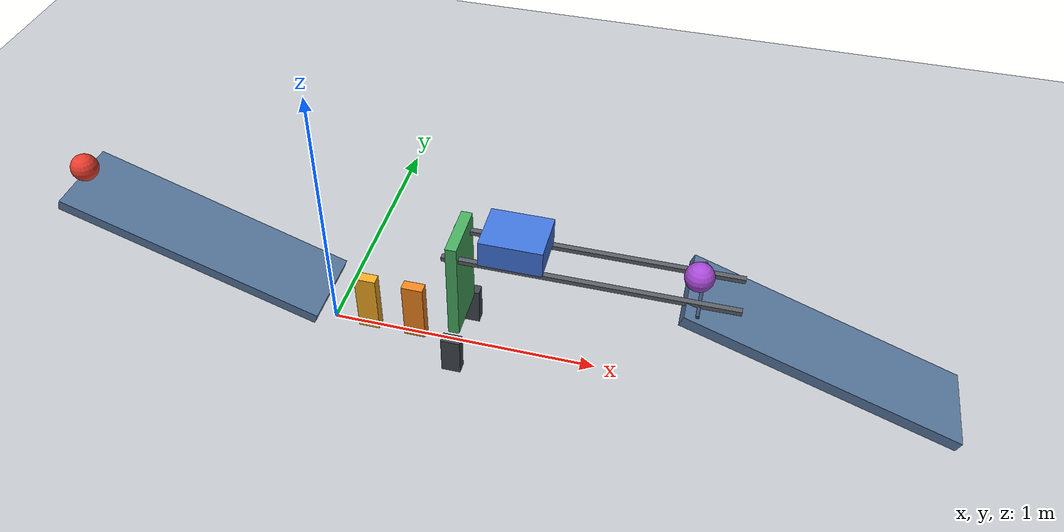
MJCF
<mujoco model="passive_domino_flap_chain">
  <compiler angle="degree" autolimits="true"/>
  <option timestep="0.002" gravity="0 0 -9.81" integrator="implicitfast" solver="Newton" iterations="100" tolerance="1e-10" cone="elliptic"/>

  <visual>
    <headlight ambient="0.35 0.35 0.35" diffuse="0.70 0.70 0.70" specular="0.20 0.20 0.20"/>
    <map znear="0.01" zfar="30"/>
  </visual>

  <!-- Contact damping ratio 0.690107 approximates restitution 0.05. -->
  <!-- Sliding friction is 0.70 throughout. Floor rolling resistance arrests the balls. -->
  <worldbody>
    <light name="overhead" pos="0.6 -1.0 4.0" dir="0 0 -1" directional="true"/>
    <camera name="side" pos="0.65 -3.7 1.70" xyaxes="1 0 0 0 0.3420201433 0.9396926208"/>

    <geom name="floor" type="plane" pos="0 0 0" size="5 3 0.1" friction="0.70 0.005 0.010" condim="6" solref="0.006 0.690107" solimp="0.95 0.99 0.001" rgba="0.76 0.78 0.80 1"/>

    <!-- Ramp top endpoints: (-0.939693, 0, 0.492020) and (0, 0, 0.150000). -->
    <body name="ramp1" pos="-0.4698463104 0 0.3210100717" euler="0 20 0">
      <geom name="ramp1_surface" type="box" pos="0 0 -0.020" size="0.500 0.150 0.020" density="0" friction="0.70 0.005 0.0001" condim="6" solref="0.006 0.690107" solimp="0.95 0.99 0.001" rgba="0.34 0.46 0.61 1"/>
    </body>

    <!-- Ball contact point is 10 mm inside the high end of ramp1. -->
    <body name="ball1" pos="-0.9131946875 0 0.5355845729">
      <freejoint/>
      <geom name="ball1_sphere" type="sphere" size="0.050" mass="0.20" friction="0.70 0.005 0.0001" condim="6" solref="0.006 0.690107" solimp="0.95 0.99 0.001" rgba="0.90 0.23 0.17 1"/>
    </body>

    <!-- The upstream face of domino1 is 0.10 m beyond ramp1's low endpoint. -->
    <body name="domino1" pos="0.140 0 0.120">
      <freejoint/>
      <geom name="domino1_box" type="box" size="0.040 0.020 0.120" mass="0.25" friction="0.70 0.005 0.0001" condim="6" solref="0.006 0.690107" solimp="0.95 0.99 0.001" rgba="0.95 0.67 0.14 1"/>
    </body>

    <body name="domino2" pos="0.320 0 0.120">
      <freejoint/>
      <geom name="domino2_box" type="box" size="0.040 0.020 0.120" mass="0.25" friction="0.70 0.005 0.0001" condim="6" solref="0.006 0.690107" solimp="0.95 0.99 0.001" rgba="0.95 0.52 0.12 1"/>
    </body>

    <!-- Positive rotation about +y is clockwise in the side camera. -->
    <!-- The panel initially spans z=0.15 to 0.55; domino2 strikes its lower half. -->
    <body name="flap1" pos="0.500 0 0.150">
      <joint name="flap1_hinge" type="hinge" axis="0 1 0" limited="true" range="0 65" damping="0.04" frictionloss="0" armature="0" margin="0" solreflimit="0.004 1" solimplimit="0.999 0.9999 0.0001"/>
      <geom name="flap1_panel" type="box" pos="0 0 0.200" size="0.020 0.100 0.200" mass="0.30" friction="0.70 0.005 0.0001" condim="6" solref="0.006 0.690107" solimp="0.95 0.99 0.001" rgba="0.28 0.68 0.38 1"/>
    </body>

    <!-- Non-colliding bearing supports show the fixed hinge mounting. -->
    <body name="flap1_mount" pos="0.500 0 0">
      <geom name="flap1_mount_left" type="box" pos="0 -0.130 0.075" size="0.035 0.020 0.075" density="0" contype="0" conaffinity="0" friction="0.70 0.005 0.0001" rgba="0.25 0.27 0.30 1"/>
      <geom name="flap1_mount_right" type="box" pos="0 0.130 0.075" size="0.035 0.020 0.075" density="0" contype="0" conaffinity="0" friction="0.70 0.005 0.0001" rgba="0.25 0.27 0.30 1"/>
    </body>

    <!-- Cart front starts at x=0.81; ball2's upstream surface is at x=1.26. -->
    <body name="cart1" pos="0.700 0 0.545">
      <joint name="cart1_slide" type="slide" axis="1 0 0" limited="true" range="0 0.62" damping="0.20" frictionloss="0" armature="0" margin="0" solreflimit="0.004 1" solimplimit="0.999 0.9999 0.0001"/>
      <geom name="cart1_box" type="box" size="0.110 0.090 0.050" mass="0.50" friction="0.70 0.005 0.0001" condim="6" solref="0.006 0.690107" solimp="0.95 0.99 0.001" rgba="0.25 0.46 0.86 1"/>
    </body>

    <!-- The slide joint supplies the actual support; these rails are visual only. -->
    <body name="cart1_track" pos="0.960 0 0.487">
      <geom name="cart1_track_left" type="box" pos="0 -0.075 0" size="0.500 0.010 0.008" density="0" contype="0" conaffinity="0" friction="0.70 0.005 0.0001" rgba="0.35 0.37 0.40 1"/>
      <geom name="cart1_track_right" type="box" pos="0 0.075 0" size="0.500 0.010 0.008" density="0" contype="0" conaffinity="0" friction="0.70 0.005 0.0001" rgba="0.35 0.37 0.40 1"/>
    </body>

    <!-- Ramp2 has the same length, width, inclination, and low-end elevation. -->
    <body name="ramp2" pos="1.7533483770 0 0.3210100717" euler="0 20 0">
      <geom name="ramp2_surface" type="box" pos="0 0 -0.020" size="0.500 0.150 0.020" density="0" friction="0.70 0.005 0.0001" condim="6" solref="0.006 0.690107" solimp="0.95 0.99 0.001" rgba="0.34 0.46 0.61 1"/>
      <!-- A shallow transverse lip creates a passive resting pocket at the high end. -->
      <geom name="ramp2_retaining_lip" type="cylinder" pos="-0.4580625612 0 0.004" quat="0.7071067812 0.7071067812 0 0" size="0.006 0.130" density="0" friction="0.70 0.005 0.0001" condim="6" solref="0.006 0.690107" solimp="0.95 0.99 0.001" rgba="0.23 0.32 0.44 1"/>
    </body>

    <body name="ball2" pos="1.310 0 0.5355845729">
      <freejoint/>
      <geom name="ball2_sphere" type="sphere" size="0.050" mass="0.20" friction="0.70 0.005 0.0001" condim="6" solref="0.006 0.690107" solimp="0.95 0.99 0.001" rgba="0.65 0.28 0.83 1"/>
    </body>
  </worldbody>

  <!-- Omitted qpos uses the body poses and zero hinge/slide coordinates above. -->
  <keyframe>
    <key name="start" time="0" qvel="0 0 0 0 0 0  0 0 0 0 0 0  0 0 0 0 0 0  0 0  0 0 0 0 0 0"/>
  </keyframe>
</mujoco>
